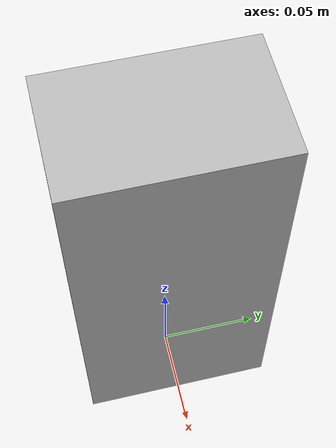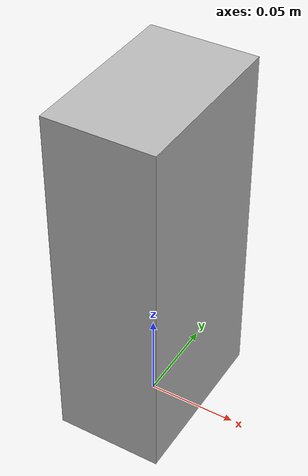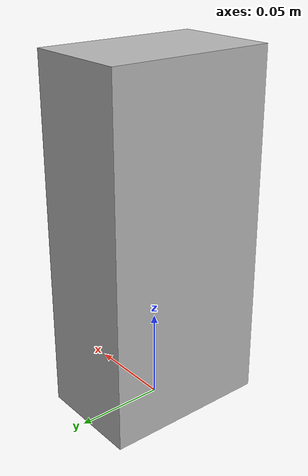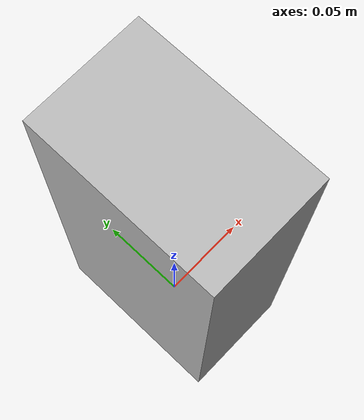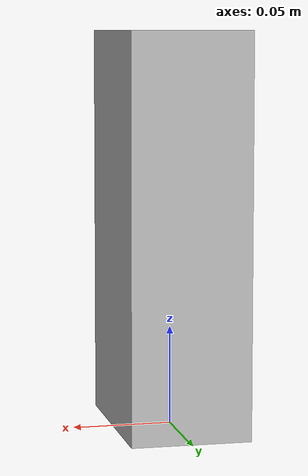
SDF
<sdf version='1.6'>
  <model name='milk'>
    <link name='box_body'>
      <pose frame=''>0 0 0 0 -0 0</pose>
      <inertial>
        <pose frame=''>0 0 0 0 -0 0</pose>
        <mass>1</mass>
        <inertia>
          <ixx>1</ixx>
          <ixy>0</ixy>
          <ixz>0</ixz>
          <iyy>1</iyy>
          <iyz>0</iyz>
          <izz>1</izz>
        </inertia>
      </inertial>
      <collision name='box_body_collision'>
        <pose frame=''>0 0 0.1 0 -0 0</pose>
        <geometry>
          <box>
            <size>0.06 0.095 0.2</size>
          </box>
        </geometry>
      </collision>
      <visual name='box_body_visual'>
        <pose frame=''>0 0 0 0 -0 1.5708</pose>
        <geometry>
          <mesh>
            <scale>1 1 1</scale>
            <uri>/opt/ros/kinetic/share/cob_gazebo_objects/Media/models/milk.dae</uri>
          </mesh>
        </geometry>
      </visual>
    </link>
    <static>0</static>
  </model>
</sdf>
